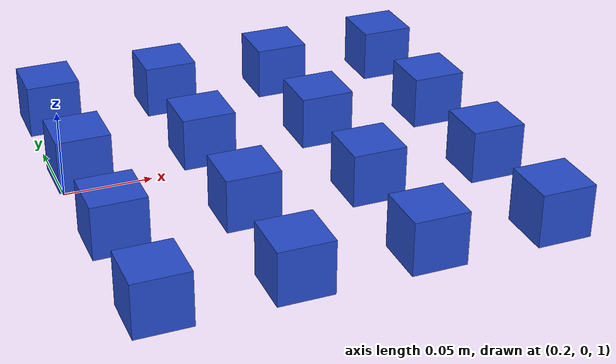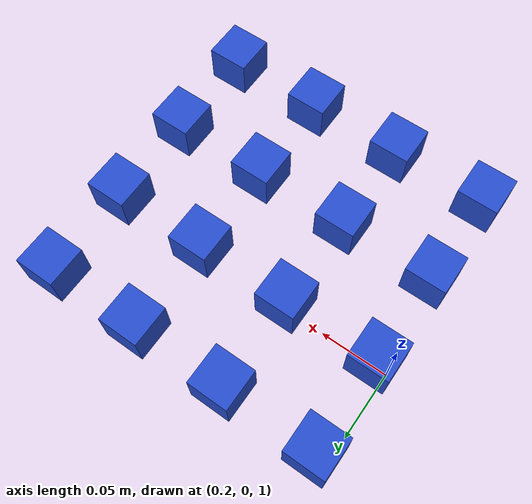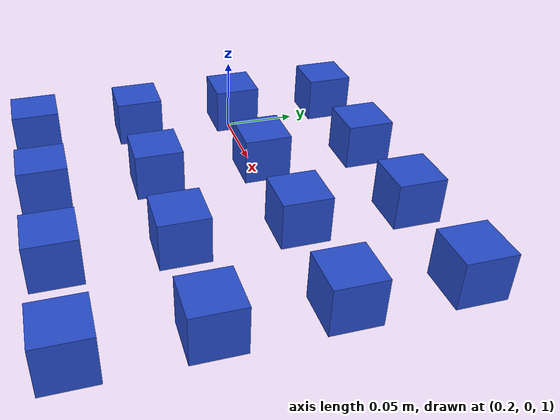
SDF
<sdf version="1.6">
 <world name="CRANE-X7 with Table">
  <scene><shadows>0</shadows></scene>
  <include><uri>model://sun</uri></include>
  <model name="cube30_1">
   <link name="link">
    <pose>0 0 0.025 0 0 0</pose>
    <inertial>
     <mass>0.0565</mass>
     <inertia>
      <ixx>2.3541666666666672e-05</ixx>
      <ixy>0</ixy>
      <ixz>0</ixz>
      <iyy>2.3541666666666672e-05</iyy>
      <iyz>0</iyz>
      <izz>2.3541666666666672e-05</izz>
     </inertia>
    </inertial>
    <collision name="collision">
     <geometry><box><size>0.03 0.03 0.03</size></box></geometry>
     <surface>
      <contact>
       <poissons_ratio>0.347</poissons_ratio>
       <elastic_modulus>8.8e+09</elastic_modulus>
       <ode><kp>100000</kp><kd>1</kd><max_vel>1.0</max_vel><min_depth>0.001</min_depth></ode>
      </contact>
      <friction>
       <torsional>
        <coefficient>1.0</coefficient>
        <use_patch_radius>0</use_patch_radius>
        <surface_radius>0.03</surface_radius>
       </torsional>
      </friction>
     </surface>
    </collision>
    <visual name="visual">
     <geometry><box><size>0.03 0.03 0.03</size></box></geometry>
     <material>
      <script><uri>file://media/materials/scripts/gazebo.material</uri><name>Gazebo/Blue</name></script>
     </material>
    </visual>
   </link>
   <pose>0.42 -0.14 1.0 0 0 0</pose>
  </model>
  <model name="cube30_2">
   <link name="link">
    <pose>0 0 0.025 0 0 0</pose>
    <inertial>
     <mass>0.0565</mass>
     <inertia>
      <ixx>2.3541666666666672e-05</ixx>
      <ixy>0</ixy>
      <ixz>0</ixz>
      <iyy>2.3541666666666672e-05</iyy>
      <iyz>0</iyz>
      <izz>2.3541666666666672e-05</izz>
     </inertia>
    </inertial>
    <collision name="collision">
     <geometry><box><size>0.03 0.03 0.03</size></box></geometry>
     <surface>
      <contact>
       <poissons_ratio>0.347</poissons_ratio>
       <elastic_modulus>8.8e+09</elastic_modulus>
       <ode><kp>100000</kp><kd>1</kd><max_vel>1.0</max_vel><min_depth>0.001</min_depth></ode>
      </contact>
      <friction>
       <torsional>
        <coefficient>1.0</coefficient>
        <use_patch_radius>0</use_patch_radius>
        <surface_radius>0.03</surface_radius>
       </torsional>
      </friction>
     </surface>
    </collision>
    <visual name="visual">
     <geometry><box><size>0.03 0.03 0.03</size></box></geometry>
     <material>
      <script><uri>file://media/materials/scripts/gazebo.material</uri><name>Gazebo/Blue</name></script>
     </material>
    </visual>
   </link>
   <pose>0.42 -0.07 1.0 0 0 0</pose>
  </model>
  <model name="cube30_3">
   <link name="link">
    <pose>0 0 0.025 0 0 0</pose>
    <inertial>
     <mass>0.0565</mass>
     <inertia>
      <ixx>2.3541666666666672e-05</ixx>
      <ixy>0</ixy>
      <ixz>0</ixz>
      <iyy>2.3541666666666672e-05</iyy>
      <iyz>0</iyz>
      <izz>2.3541666666666672e-05</izz>
     </inertia>
    </inertial>
    <collision name="collision">
     <geometry><box><size>0.03 0.03 0.03</size></box></geometry>
     <surface>
      <contact>
       <poissons_ratio>0.347</poissons_ratio>
       <elastic_modulus>8.8e+09</elastic_modulus>
       <ode><kp>100000</kp><kd>1</kd><max_vel>1.0</max_vel><min_depth>0.001</min_depth></ode>
      </contact>
      <friction>
       <torsional>
        <coefficient>1.0</coefficient>
        <use_patch_radius>0</use_patch_radius>
        <surface_radius>0.03</surface_radius>
       </torsional>
      </friction>
     </surface>
    </collision>
    <visual name="visual">
     <geometry><box><size>0.03 0.03 0.03</size></box></geometry>
     <material>
      <script><uri>file://media/materials/scripts/gazebo.material</uri><name>Gazebo/Blue</name></script>
     </material>
    </visual>
   </link>
   <pose>0.42 0.0 1.0 0 0 0</pose>
  </model>
  <model name="cube30_4">
   <link name="link">
    <pose>0 0 0.025 0 0 0</pose>
    <inertial>
     <mass>0.0565</mass>
     <inertia>
      <ixx>2.3541666666666672e-05</ixx>
      <ixy>0</ixy>
      <ixz>0</ixz>
      <iyy>2.3541666666666672e-05</iyy>
      <iyz>0</iyz>
      <izz>2.3541666666666672e-05</izz>
     </inertia>
    </inertial>
    <collision name="collision">
     <geometry><box><size>0.03 0.03 0.03</size></box></geometry>
     <surface>
      <contact>
       <poissons_ratio>0.347</poissons_ratio>
       <elastic_modulus>8.8e+09</elastic_modulus>
       <ode><kp>100000</kp><kd>1</kd><max_vel>1.0</max_vel><min_depth>0.001</min_depth></ode>
      </contact>
      <friction>
       <torsional>
        <coefficient>1.0</coefficient>
        <use_patch_radius>0</use_patch_radius>
        <surface_radius>0.03</surface_radius>
       </torsional>
      </friction>
     </surface>
    </collision>
    <visual name="visual">
     <geometry><box><size>0.03 0.03 0.03</size></box></geometry>
     <material>
      <script><uri>file://media/materials/scripts/gazebo.material</uri><name>Gazebo/Blue</name></script>
     </material>
    </visual>
   </link>
   <pose>0.42 0.07 1.0 0 0 0</pose>
  </model>
  <model name="cube30_5">
   <link name="link">
    <pose>0 0 0.025 0 0 0</pose>
    <inertial>
     <mass>0.0565</mass>
     <inertia>
      <ixx>2.3541666666666672e-05</ixx>
      <ixy>0</ixy>
      <ixz>0</ixz>
      <iyy>2.3541666666666672e-05</iyy>
      <iyz>0</iyz>
      <izz>2.3541666666666672e-05</izz>
     </inertia>
    </inertial>
    <collision name="collision">
     <geometry><box><size>0.03 0.03 0.03</size></box></geometry>
     <surface>
      <contact>
       <poissons_ratio>0.347</poissons_ratio>
       <elastic_modulus>8.8e+09</elastic_modulus>
       <ode><kp>100000</kp><kd>1</kd><max_vel>1.0</max_vel><min_depth>0.001</min_depth></ode>
      </contact>
      <friction>
       <torsional>
        <coefficient>1.0</coefficient>
        <use_patch_radius>0</use_patch_radius>
        <surface_radius>0.03</surface_radius>
       </torsional>
      </friction>
     </surface>
    </collision>
    <visual name="visual">
     <geometry><box><size>0.03 0.03 0.03</size></box></geometry>
     <material>
      <script><uri>file://media/materials/scripts/gazebo.material</uri><name>Gazebo/Blue</name></script>
     </material>
    </visual>
   </link>
   <pose>0.35 -0.14 1.0 0 0 0</pose>
  </model>
  <model name="cube30_6">
   <link name="link">
    <pose>0 0 0.025 0 0 0</pose>
    <inertial>
     <mass>0.0565</mass>
     <inertia>
      <ixx>2.3541666666666672e-05</ixx>
      <ixy>0</ixy>
      <ixz>0</ixz>
      <iyy>2.3541666666666672e-05</iyy>
      <iyz>0</iyz>
      <izz>2.3541666666666672e-05</izz>
     </inertia>
    </inertial>
    <collision name="collision">
     <geometry><box><size>0.03 0.03 0.03</size></box></geometry>
     <surface>
      <contact>
       <poissons_ratio>0.347</poissons_ratio>
       <elastic_modulus>8.8e+09</elastic_modulus>
       <ode><kp>100000</kp><kd>1</kd><max_vel>1.0</max_vel><min_depth>0.001</min_depth></ode>
      </contact>
      <friction>
       <torsional>
        <coefficient>1.0</coefficient>
        <use_patch_radius>0</use_patch_radius>
        <surface_radius>0.03</surface_radius>
       </torsional>
      </friction>
     </surface>
    </collision>
    <visual name="visual">
     <geometry><box><size>0.03 0.03 0.03</size></box></geometry>
     <material>
      <script><uri>file://media/materials/scripts/gazebo.material</uri><name>Gazebo/Blue</name></script>
     </material>
    </visual>
   </link>
   <pose>0.35 -0.07 1.0 0 0 0</pose>
  </model>
  <model name="cube30_7">
   <link name="link">
    <pose>0 0 0.025 0 0 0</pose>
    <inertial>
     <mass>0.0565</mass>
     <inertia>
      <ixx>2.3541666666666672e-05</ixx>
      <ixy>0</ixy>
      <ixz>0</ixz>
      <iyy>2.3541666666666672e-05</iyy>
      <iyz>0</iyz>
      <izz>2.3541666666666672e-05</izz>
     </inertia>
    </inertial>
    <collision name="collision">
     <geometry><box><size>0.03 0.03 0.03</size></box></geometry>
     <surface>
      <contact>
       <poissons_ratio>0.347</poissons_ratio>
       <elastic_modulus>8.8e+09</elastic_modulus>
       <ode><kp>100000</kp><kd>1</kd><max_vel>1.0</max_vel><min_depth>0.001</min_depth></ode>
      </contact>
      <friction>
       <torsional>
        <coefficient>1.0</coefficient>
        <use_patch_radius>0</use_patch_radius>
        <surface_radius>0.03</surface_radius>
       </torsional>
      </friction>
     </surface>
    </collision>
    <visual name="visual">
     <geometry><box><size>0.03 0.03 0.03</size></box></geometry>
     <material>
      <script><uri>file://media/materials/scripts/gazebo.material</uri><name>Gazebo/Blue</name></script>
     </material>
    </visual>
   </link>
   <pose>0.35 0.0 1.0 0 0 0</pose>
  </model>
  <model name="cube30_8">
   <link name="link">
    <pose>0 0 0.025 0 0 0</pose>
    <inertial>
     <mass>0.0565</mass>
     <inertia>
      <ixx>2.3541666666666672e-05</ixx>
      <ixy>0</ixy>
      <ixz>0</ixz>
      <iyy>2.3541666666666672e-05</iyy>
      <iyz>0</iyz>
      <izz>2.3541666666666672e-05</izz>
     </inertia>
    </inertial>
    <collision name="collision">
     <geometry><box><size>0.03 0.03 0.03</size></box></geometry>
     <surface>
      <contact>
       <poissons_ratio>0.347</poissons_ratio>
       <elastic_modulus>8.8e+09</elastic_modulus>
       <ode><kp>100000</kp><kd>1</kd><max_vel>1.0</max_vel><min_depth>0.001</min_depth></ode>
      </contact>
      <friction>
       <torsional>
        <coefficient>1.0</coefficient>
        <use_patch_radius>0</use_patch_radius>
        <surface_radius>0.03</surface_radius>
       </torsional>
      </friction>
     </surface>
    </collision>
    <visual name="visual">
     <geometry><box><size>0.03 0.03 0.03</size></box></geometry>
     <material>
      <script><uri>file://media/materials/scripts/gazebo.material</uri><name>Gazebo/Blue</name></script>
     </material>
    </visual>
   </link>
   <pose>0.35 0.07 1.0 0 0 0</pose>
  </model>
  <model name="cube30_9">
   <link name="link">
    <pose>0 0 0.025 0 0 0</pose>
    <inertial>
     <mass>0.0565</mass>
     <inertia>
      <ixx>2.3541666666666672e-05</ixx>
      <ixy>0</ixy>
      <ixz>0</ixz>
      <iyy>2.3541666666666672e-05</iyy>
      <iyz>0</iyz>
      <izz>2.3541666666666672e-05</izz>
     </inertia>
    </inertial>
    <collision name="collision">
     <geometry><box><size>0.03 0.03 0.03</size></box></geometry>
     <surface>
      <contact>
       <poissons_ratio>0.347</poissons_ratio>
       <elastic_modulus>8.8e+09</elastic_modulus>
       <ode><kp>100000</kp><kd>1</kd><max_vel>1.0</max_vel><min_depth>0.001</min_depth></ode>
      </contact>
      <friction>
       <torsional>
        <coefficient>1.0</coefficient>
        <use_patch_radius>0</use_patch_radius>
        <surface_radius>0.03</surface_radius>
       </torsional>
      </friction>
     </surface>
    </collision>
    <visual name="visual">
     <geometry><box><size>0.03 0.03 0.03</size></box></geometry>
     <material>
      <script><uri>file://media/materials/scripts/gazebo.material</uri><name>Gazebo/Blue</name></script>
     </material>
    </visual>
   </link>
   <pose>0.28 -0.14 1.0 0 0 0</pose>
  </model>
  <model name="cube30_10">
   <link name="link">
    <pose>0 0 0.025 0 0 0</pose>
    <inertial>
     <mass>0.0565</mass>
     <inertia>
      <ixx>2.3541666666666672e-05</ixx>
      <ixy>0</ixy>
      <ixz>0</ixz>
      <iyy>2.3541666666666672e-05</iyy>
      <iyz>0</iyz>
      <izz>2.3541666666666672e-05</izz>
     </inertia>
    </inertial>
    <collision name="collision">
     <geometry><box><size>0.03 0.03 0.03</size></box></geometry>
     <surface>
      <contact>
       <poissons_ratio>0.347</poissons_ratio>
       <elastic_modulus>8.8e+09</elastic_modulus>
       <ode><kp>100000</kp><kd>1</kd><max_vel>1.0</max_vel><min_depth>0.001</min_depth></ode>
      </contact>
      <friction>
       <torsional>
        <coefficient>1.0</coefficient>
        <use_patch_radius>0</use_patch_radius>
        <surface_radius>0.03</surface_radius>
       </torsional>
      </friction>
     </surface>
    </collision>
    <visual name="visual">
     <geometry><box><size>0.03 0.03 0.03</size></box></geometry>
     <material>
      <script><uri>file://media/materials/scripts/gazebo.material</uri><name>Gazebo/Blue</name></script>
     </material>
    </visual>
   </link>
   <pose>0.28 -0.07 1.0 0 0 0</pose>
  </model>
  <model name="cube30_11">
   <link name="link">
    <pose>0 0 0.025 0 0 0</pose>
    <inertial>
     <mass>0.0565</mass>
     <inertia>
      <ixx>2.3541666666666672e-05</ixx>
      <ixy>0</ixy>
      <ixz>0</ixz>
      <iyy>2.3541666666666672e-05</iyy>
      <iyz>0</iyz>
      <izz>2.3541666666666672e-05</izz>
     </inertia>
    </inertial>
    <collision name="collision">
     <geometry><box><size>0.03 0.03 0.03</size></box></geometry>
     <surface>
      <contact>
       <poissons_ratio>0.347</poissons_ratio>
       <elastic_modulus>8.8e+09</elastic_modulus>
       <ode><kp>100000</kp><kd>1</kd><max_vel>1.0</max_vel><min_depth>0.001</min_depth></ode>
      </contact>
      <friction>
       <torsional>
        <coefficient>1.0</coefficient>
        <use_patch_radius>0</use_patch_radius>
        <surface_radius>0.03</surface_radius>
       </torsional>
      </friction>
     </surface>
    </collision>
    <visual name="visual">
     <geometry><box><size>0.03 0.03 0.03</size></box></geometry>
     <material>
      <script><uri>file://media/materials/scripts/gazebo.material</uri><name>Gazebo/Blue</name></script>
     </material>
    </visual>
   </link>
   <pose>0.28 0.0 1.0 0 0 0</pose>
  </model>
  <model name="cube30_12">
   <link name="link">
    <pose>0 0 0.025 0 0 0</pose>
    <inertial>
     <mass>0.0565</mass>
     <inertia>
      <ixx>2.3541666666666672e-05</ixx>
      <ixy>0</ixy>
      <ixz>0</ixz>
      <iyy>2.3541666666666672e-05</iyy>
      <iyz>0</iyz>
      <izz>2.3541666666666672e-05</izz>
     </inertia>
    </inertial>
    <collision name="collision">
     <geometry><box><size>0.03 0.03 0.03</size></box></geometry>
     <surface>
      <contact>
       <poissons_ratio>0.347</poissons_ratio>
       <elastic_modulus>8.8e+09</elastic_modulus>
       <ode><kp>100000</kp><kd>1</kd><max_vel>1.0</max_vel><min_depth>0.001</min_depth></ode>
      </contact>
      <friction>
       <torsional>
        <coefficient>1.0</coefficient>
        <use_patch_radius>0</use_patch_radius>
        <surface_radius>0.03</surface_radius>
       </torsional>
      </friction>
     </surface>
    </collision>
    <visual name="visual">
     <geometry><box><size>0.03 0.03 0.03</size></box></geometry>
     <material>
      <script><uri>file://media/materials/scripts/gazebo.material</uri><name>Gazebo/Blue</name></script>
     </material>
    </visual>
   </link>
   <pose>0.28 0.07 1.0 0 0 0</pose>
  </model>
  <model name="cube30_13">
   <link name="link">
    <pose>0 0 0.025 0 0 0</pose>
    <inertial>
     <mass>0.0565</mass>
     <inertia>
      <ixx>2.3541666666666672e-05</ixx>
      <ixy>0</ixy>
      <ixz>0</ixz>
      <iyy>2.3541666666666672e-05</iyy>
      <iyz>0</iyz>
      <izz>2.3541666666666672e-05</izz>
     </inertia>
    </inertial>
    <collision name="collision">
     <geometry><box><size>0.03 0.03 0.03</size></box></geometry>
     <surface>
      <contact>
       <poissons_ratio>0.347</poissons_ratio>
       <elastic_modulus>8.8e+09</elastic_modulus>
       <ode><kp>100000</kp><kd>1</kd><max_vel>1.0</max_vel><min_depth>0.001</min_depth></ode>
      </contact>
      <friction>
       <torsional>
        <coefficient>1.0</coefficient>
        <use_patch_radius>0</use_patch_radius>
        <surface_radius>0.03</surface_radius>
       </torsional>
      </friction>
     </surface>
    </collision>
    <visual name="visual">
     <geometry><box><size>0.03 0.03 0.03</size></box></geometry>
     <material>
      <script><uri>file://media/materials/scripts/gazebo.material</uri><name>Gazebo/Blue</name></script>
     </material>
    </visual>
   </link>
   <pose>0.21 -0.14 1.0 0 0 0</pose>
  </model>
  <model name="cube30_14">
   <link name="link">
    <pose>0 0 0.025 0 0 0</pose>
    <inertial>
     <mass>0.0565</mass>
     <inertia>
      <ixx>2.3541666666666672e-05</ixx>
      <ixy>0</ixy>
      <ixz>0</ixz>
      <iyy>2.3541666666666672e-05</iyy>
      <iyz>0</iyz>
      <izz>2.3541666666666672e-05</izz>
     </inertia>
    </inertial>
    <collision name="collision">
     <geometry><box><size>0.03 0.03 0.03</size></box></geometry>
     <surface>
      <contact>
       <poissons_ratio>0.347</poissons_ratio>
       <elastic_modulus>8.8e+09</elastic_modulus>
       <ode><kp>100000</kp><kd>1</kd><max_vel>1.0</max_vel><min_depth>0.001</min_depth></ode>
      </contact>
      <friction>
       <torsional>
        <coefficient>1.0</coefficient>
        <use_patch_radius>0</use_patch_radius>
        <surface_radius>0.03</surface_radius>
       </torsional>
      </friction>
     </surface>
    </collision>
    <visual name="visual">
     <geometry><box><size>0.03 0.03 0.03</size></box></geometry>
     <material>
      <script><uri>file://media/materials/scripts/gazebo.material</uri><name>Gazebo/Blue</name></script>
     </material>
    </visual>
   </link>
   <pose>0.21 -0.07 1.0 0 0 0</pose>
  </model>
  <model name="cube30_15">
   <link name="link">
    <pose>0 0 0.025 0 0 0</pose>
    <inertial>
     <mass>0.0565</mass>
     <inertia>
      <ixx>2.3541666666666672e-05</ixx>
      <ixy>0</ixy>
      <ixz>0</ixz>
      <iyy>2.3541666666666672e-05</iyy>
      <iyz>0</iyz>
      <izz>2.3541666666666672e-05</izz>
     </inertia>
    </inertial>
    <collision name="collision">
     <geometry><box><size>0.03 0.03 0.03</size></box></geometry>
     <surface>
      <contact>
       <poissons_ratio>0.347</poissons_ratio>
       <elastic_modulus>8.8e+09</elastic_modulus>
       <ode><kp>100000</kp><kd>1</kd><max_vel>1.0</max_vel><min_depth>0.001</min_depth></ode>
      </contact>
      <friction>
       <torsional>
        <coefficient>1.0</coefficient>
        <use_patch_radius>0</use_patch_radius>
        <surface_radius>0.03</surface_radius>
       </torsional>
      </friction>
     </surface>
    </collision>
    <visual name="visual">
     <geometry><box><size>0.03 0.03 0.03</size></box></geometry>
     <material>
      <script><uri>file://media/materials/scripts/gazebo.material</uri><name>Gazebo/Blue</name></script>
     </material>
    </visual>
   </link>
   <pose>0.21 0.0 1.0 0 0 0</pose>
  </model>
  <model name="cube30_16">
   <link name="link">
    <pose>0 0 0.025 0 0 0</pose>
    <inertial>
     <mass>0.0565</mass>
     <inertia>
      <ixx>2.3541666666666672e-05</ixx>
      <ixy>0</ixy>
      <ixz>0</ixz>
      <iyy>2.3541666666666672e-05</iyy>
      <iyz>0</iyz>
      <izz>2.3541666666666672e-05</izz>
     </inertia>
    </inertial>
    <collision name="collision">
     <geometry><box><size>0.03 0.03 0.03</size></box></geometry>
     <surface>
      <contact>
       <poissons_ratio>0.347</poissons_ratio>
       <elastic_modulus>8.8e+09</elastic_modulus>
       <ode><kp>100000</kp><kd>1</kd><max_vel>1.0</max_vel><min_depth>0.001</min_depth></ode>
      </contact>
      <friction>
       <torsional>
        <coefficient>1.0</coefficient>
        <use_patch_radius>0</use_patch_radius>
        <surface_radius>0.03</surface_radius>
       </torsional>
      </friction>
     </surface>
    </collision>
    <visual name="visual">
     <geometry><box><size>0.03 0.03 0.03</size></box></geometry>
     <material>
      <script><uri>file://media/materials/scripts/gazebo.material</uri><name>Gazebo/Blue</name></script>
     </material>
    </visual>
   </link>
   <pose>0.21 0.07 1.0 0 0 0</pose>
  </model>
  <model name="ground_plane">
   <include><uri>model://ground_plane</uri></include>
   <joint name="ground_joint" type="fixed"><parent>ground_plane::link</parent><child>table::link</child></joint>
  </model>
 </world>
</sdf>
